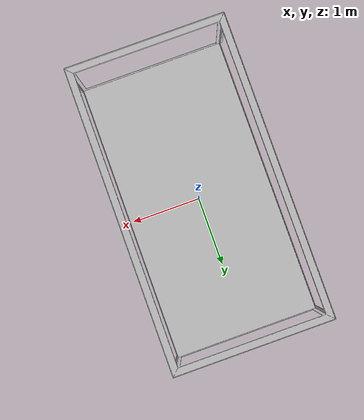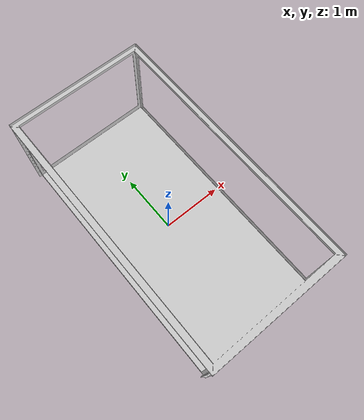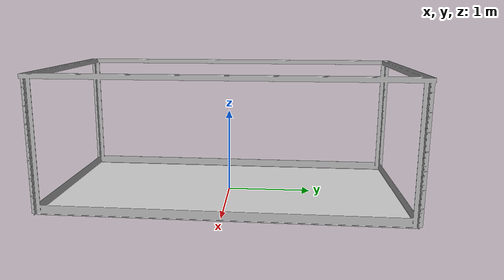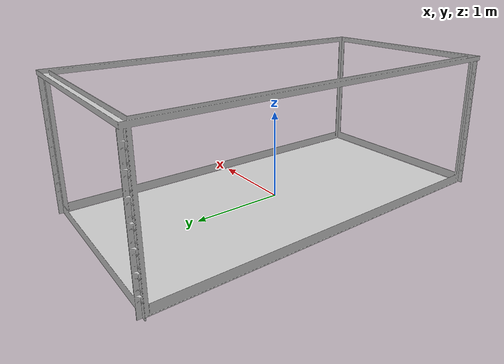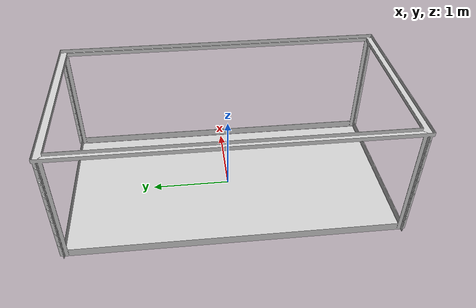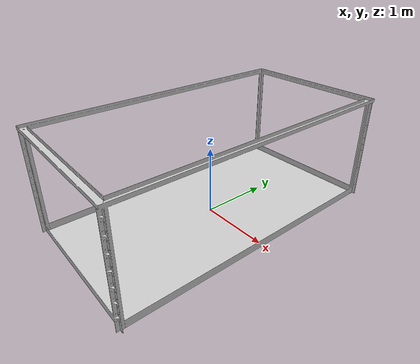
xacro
<?xml version="1.0"?>
<robot xmlns:xacro="http://www.ros.org/wiki/xacro" name="pool">
    <xacro:include filename="$(find hippo_sim)/models/common/urdf/common.xacro" />
    <gazebo>
        <static>true</static>
    </gazebo>
    <link name="base_link">
        <xacro:zero_inertia />
        <visual>
            <geometry>
                <mesh filename="$(find hippo_sim)/models/pool/meshes/pool.dae" />
            </geometry>
        </visual>
    </link>

    <gazebo reference="base_link">
        <visual>
            <material>
                <ambient>1 1 1 1</ambient>
                <diffuse>1 1 1 1</diffuse>
                <specular>1 1 1 1</specular>
                <pbr>
                    <metal>
                        <metalness>1</metalness>
                        <roughness>0.5</roughness>
                        <environment_map>$(find hippo_sim)/models/common/textures/env_map.dds</environment_map>
                        <albedo_map>$(find hippo_sim)/models/common/textures/blue.png</albedo_map>
                    </metal>
                </pbr>
            </material>
        </visual>
    </gazebo>

</robot>

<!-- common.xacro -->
<robot xmlns:xacro="http://www.ros.org/wiki/xacro">
    <xacro:macro name="zero_inertia">
        <inertial>
            <mass value="1e-5" />
            <inertia ixx="1e-5" ixy="0.0" ixz="0.0" iyy="1e-5" iyz="0.0" izz="1e-5" />
        </inertial>
    </xacro:macro>
    <xacro:arg name="vehicle_name" default="this_shoud_be_replaced_by_your_vehicle_name" />
</robot>
